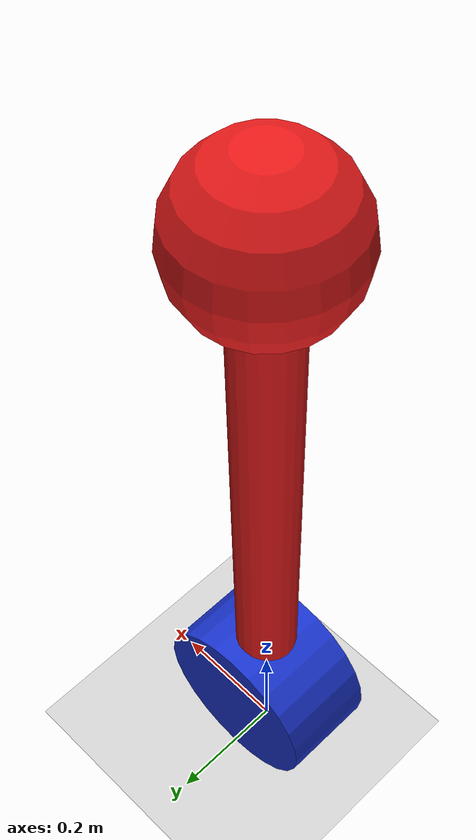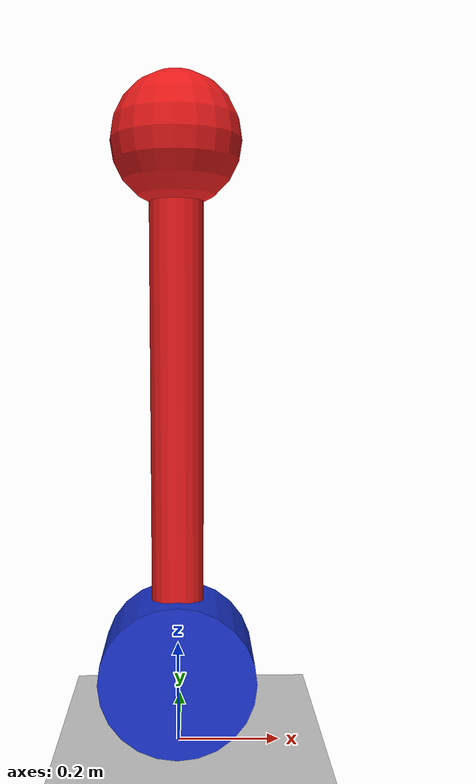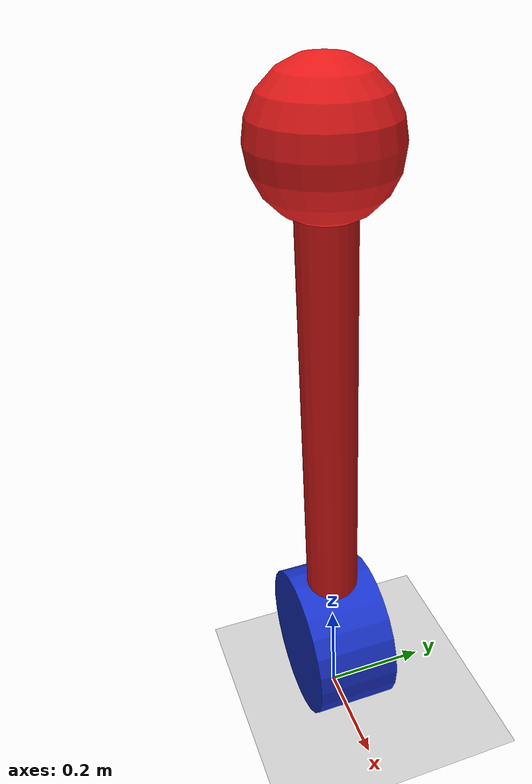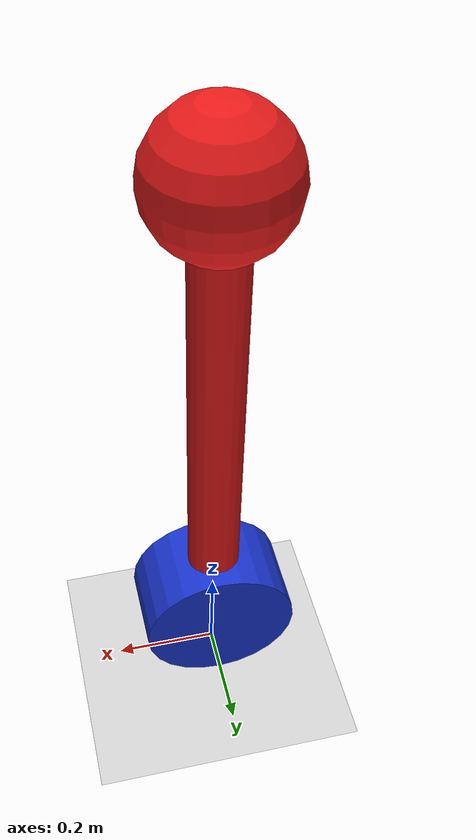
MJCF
<mujoco model="simple_segway">
  <compiler angle="radian"/>

  <default>
    <joint damping="0.1"/>
    <geom friction="1 0.1 0.1" density="500"/>
  </default>

  <worldbody>
    <geom name="ground" size="10 10 0.1" type="plane" rgba="0.8 0.8 0.8 1"/>
    <light pos="0 0 4" dir="0 0 -1"/>
    <body name="cart" pos="0 0 0.15">
      <joint name="cart_slide" pos="0 0 0" axis="1 0 0" type="slide"/>
      <geom name="wheel" size="0.15 0.08" quat="0.707105 0.707108 0 0" type="cylinder" rgba="0.1 0.2 0.8 1"/>
      <body name="pendulum">
        <joint name="theta_hinge" pos="0 0 0" axis="0 1 0" damping="0.05"/>
        <geom name="body_rod" size="0.05 0.5" pos="0 0 0.5" quat="0 1 0 0" type="capsule" rgba="0.9 0.1 0.1 1"/>
        <geom name="top_mass" size="0.12" pos="0 0 1" rgba="0.9 0.1 0.1 1"/>
      </body>
    </body>
  </worldbody>

  <actuator>
    <general name="cart_motor" joint="cart_slide" ctrllimited="true" ctrlrange="-50 50"/>
  </actuator>
</mujoco>
